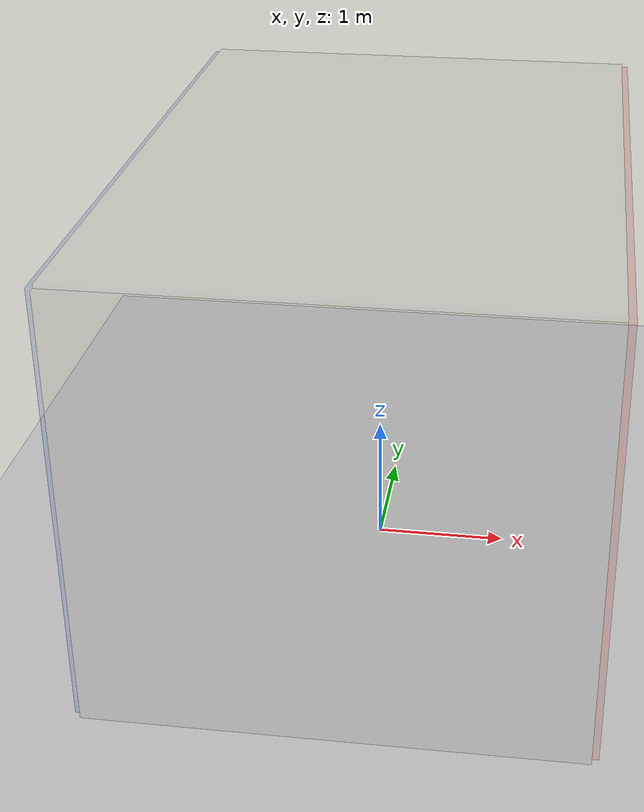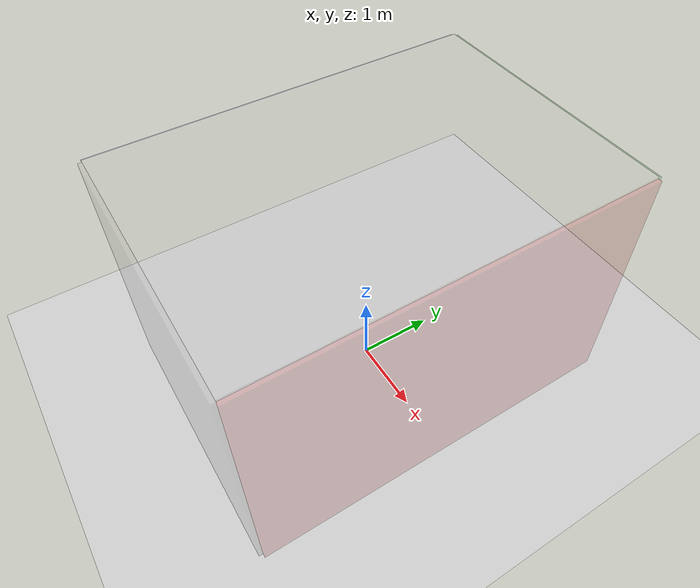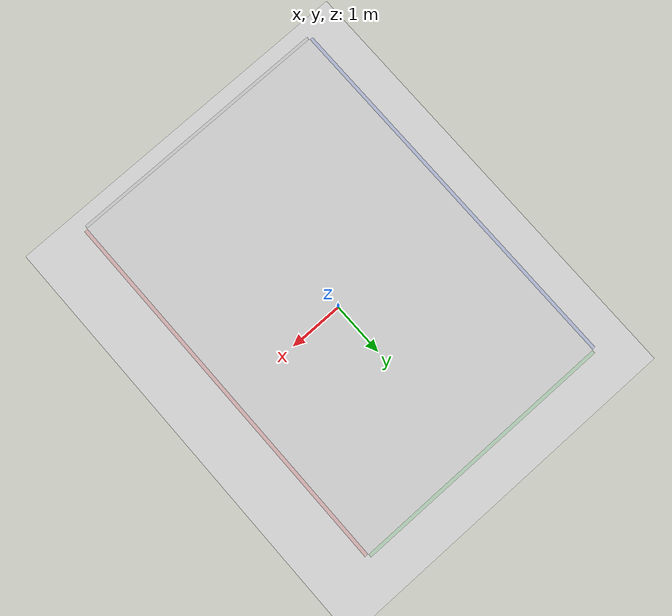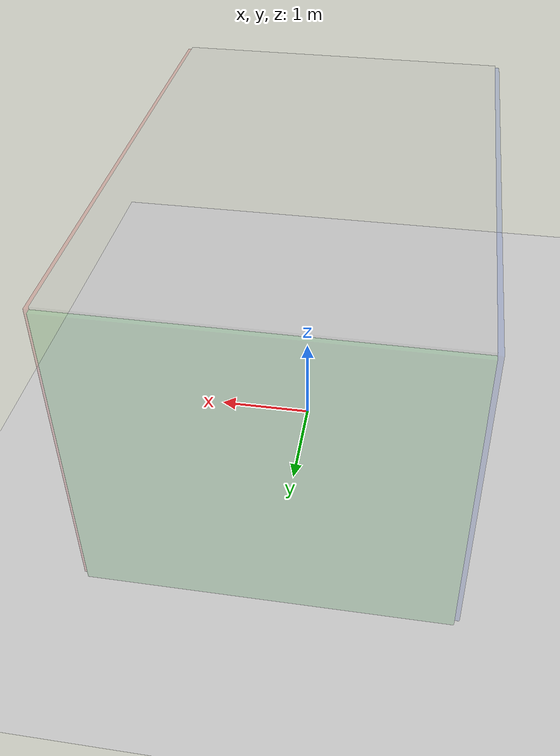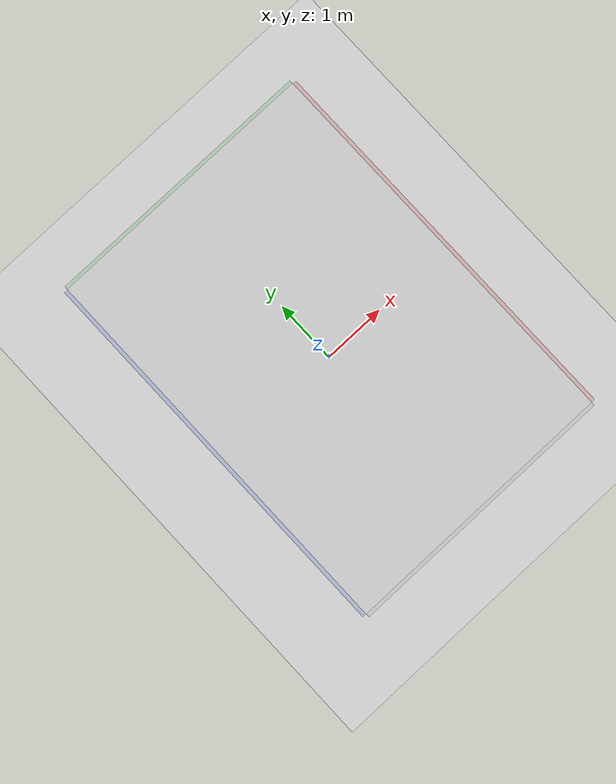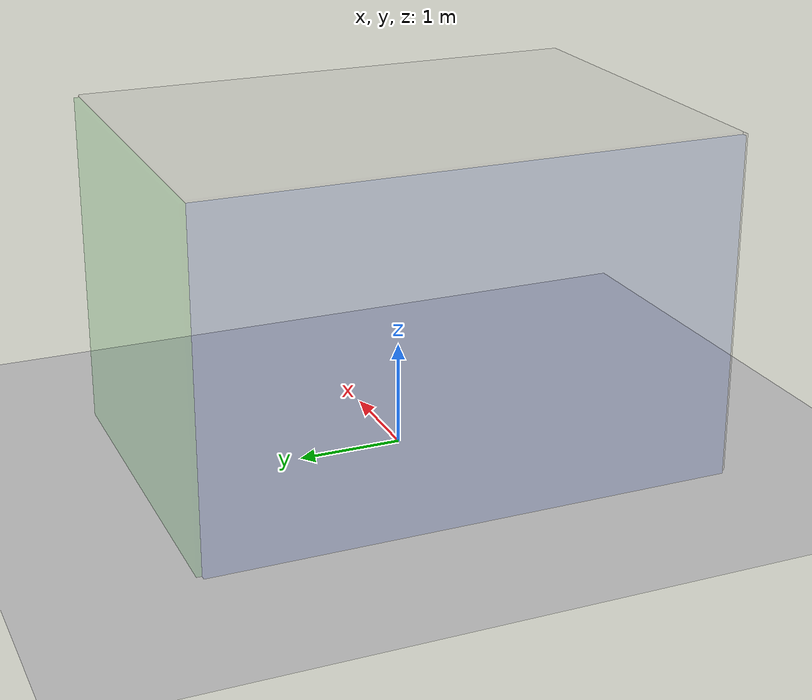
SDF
<?xml version="1.0" ?>
<sdf version="1.4">
  <world name="default">
    <!-- Place user camera -->
    <gui>
      <camera name="user_camera">
        <pose>-7.0 -1.0 1.0 0.0 0.03 0.1</pose>
      </camera>
    </gui>
    <include>
      <uri>model://ground_plane</uri>
    </include>
    <include>
      <uri>model://sun</uri>
    </include>

    <!-- Only one ROS interface plugin is required per world, as any other plugin can connect a Gazebo
         topic to a ROS topic (or vise versa). -->
    <plugin name="ros_interface_plugin" filename="librotors_gazebo_ros_interface_plugin.so"/>

    <spherical_coordinates>
      <surface_model>EARTH_WGS84</surface_model>
      <latitude_deg>38.660289</latitude_deg>
      <longitude_deg>-9.204987</longitude_deg>
      <elevation>70.0</elevation>
      <heading_deg>0</heading_deg>
    </spherical_coordinates>

    <frame name="origin">
      <pose> 0.0 0.0 0.0 0 0 0</pose>
    </frame>

    <model name="Floor">
       <pose relative_to="origin">0 0 -0.05 0 0 0</pose>
       <static>1</static>
       <link name="body">
         <collision name="geom_1">
           <geometry>
             <box><size>3.5 5.0 0.05 0 0 0</size></box>
           </geometry>
         </collision>

         <!-- Keep collision box, but dont show it -->
         <visual name="floor">
            <geometry>
             <box><size>3.5 5.0 0.05 0 0 0</size></box>
           </geometry>
           <material>
            <script>
              <uri>file://media/materials/scripts/gazebo.material</uri>
              <name>Gazebo/DarkGrey</name>
            </script>
           </material>
         </visual>
       </link>
    </model>

    <!-- Ceiling -->
    <model name="ceiling">
       <pose relative_to="origin">0 0 3.24 0 0 0</pose>
       <static>1</static>
       <link name="body">
         <collision name="geom_1">
           <geometry>
             <box><size>3.5 5.0 0.05 0 0 0</size></box>
           </geometry>
         </collision>

         <!-- Keep collision box, but dont show it -->
         <visual name="ceiling">
           <geometry>
             <box><size>3.5 5.0 0.05 0 0 0</size></box>
           </geometry>
           <material>
             <script>Gazebo/BlueTransparentOverlay</script>
           </material>
           <transparency>0.9</transparency>
         </visual>
       </link>
    </model>

    <!-- Front Wall -->
    <model name="front_wall">
       <pose relative_to="origin">1.75 0.0 1.62 0 0 0</pose>
       <static>1</static>
       <link name="body">
         <collision name="geom_1">
           <geometry>
             <box><size>0.1 5.0 3.24 0 0 0</size></box>
           </geometry>
         </collision>

         <visual name="wall_f">
           <geometry>
             <box><size>0.1 5.0 3.24 0 0 0</size></box>
           </geometry>
           <material>
            <script>
              <uri>file://media/materials/scripts/gazebo.material</uri>
              <name>Gazebo/Red</name>
            </script>
           </material>
	   <transparency>0.9</transparency>
         </visual>
       </link>
    </model>

    <!-- West Wall -->
    <model name="left_wall">
       <pose relative_to="origin">0.0 2.5 1.62 0 0 0</pose>
       <static>1</static>
       <link name="body">
         <collision name="geom_1">
           <geometry>
             <box><size>3.5 0.1 3.24 0 0 0</size></box>
           </geometry>
         </collision>

         <visual name="wall_l">
           <geometry>
             <box><size>3.5 0.1 3.24 0 0 0</size></box>
           </geometry>
           <material>
            <script>
              <uri>file://media/materials/scripts/gazebo.material</uri>
              <name>Gazebo/Green</name>
            </script>
           </material>
	   <transparency>0.9</transparency>
         </visual>
       </link>
    </model>

    <!-- South Wall -->
    <model name="back_wall">
       <pose relative_to="origin">-1.75 0.0 1.62 0 0 0</pose>
       <static>1</static>
       <link name="body">
         <collision name="geom_1">
           <geometry>
             <box><size>0.1 5.0 3.24 0 0 0</size></box>
           </geometry>
         </collision>

         <visual name="wall_b">
           <geometry>
             <box><size>0.1 5.0 3.24 0 0 0</size></box>
           </geometry>
           <material>
            <script>
              <uri>file://media/materials/scripts/gazebo.material</uri>
              <name>Gazebo/Blue</name>
            </script>
           </material>
	   <transparency>0.9</transparency>
         </visual>
       </link>
    </model>

    <!-- East Wall -->
    <model name="right_wall">
       <pose relative_to="origin">0.0 -2.5 1.62 0 0 0</pose>
       <static>1</static>
       <link name="body">
         <collision name="geom_1">
           <geometry>
             <box><size>3.5 0.1 3.24 0 0 0</size></box>
           </geometry>
         </collision>

         <visual name="wall_r">
           <geometry>
             <box><size>3.5 0.1 3.24 0 0 0</size></box>
           </geometry>
           <material>
            <script>
              <uri>file://media/materials/scripts/gazebo.material</uri>
              <name>Gazebo/Grey</name>
            </script>
           </material>
	   <transparency>0.9</transparency>
	   <!-- Keep collision box, but dont show it -->
         </visual>
       </link>
    </model>

    <physics type='ode'>
      <ode>
        <solver>
          <type>quick</type>
          <iters>1000</iters>
          <sor>1.3</sor>
        </solver>
        <constraints>
          <cfm>0</cfm>
          <erp>0.2</erp>
          <contact_max_correcting_vel>100</contact_max_correcting_vel>
          <contact_surface_layer>0.001</contact_surface_layer>
        </constraints>
      </ode>
      <max_step_size>0.01</max_step_size>
      <real_time_factor>1</real_time_factor>
      <real_time_update_rate>100</real_time_update_rate>
      <gravity>0 0 -9.8</gravity>
    </physics>

    <scene>
      <shadows>false</shadows>
      <sky>
        <clouds/>
      </sky>
    </scene>

  </world>
</sdf>
